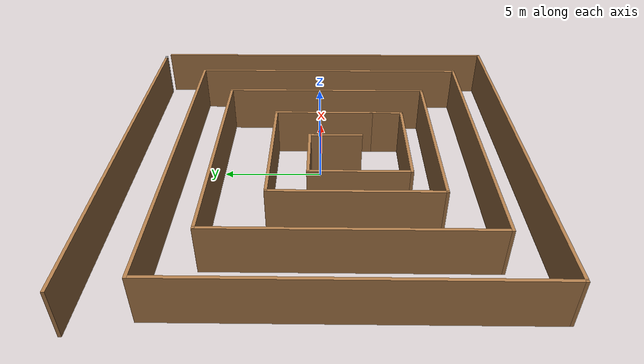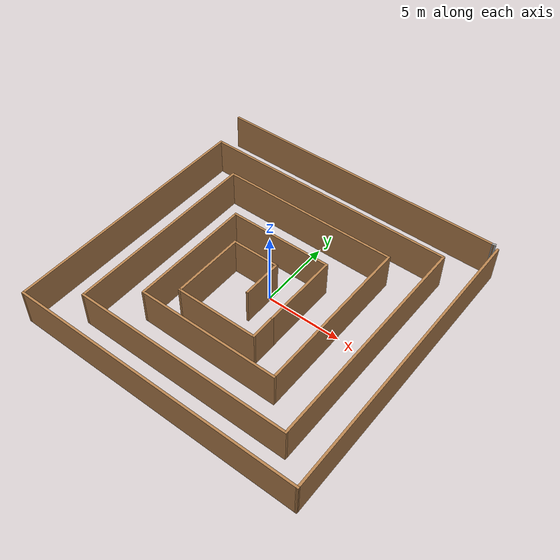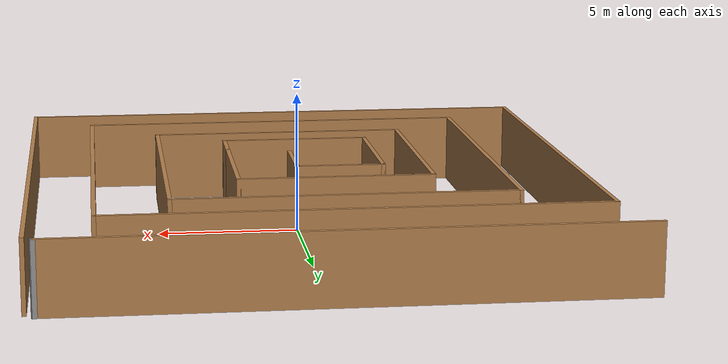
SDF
<?xml version='1.0'?>
<sdf version='1.7'>
  <model name='maze_square.world'>
    <pose>-0.485493 -0.027155 0 0 -0 0</pose>
    <link name='Wall_10'>
      <collision name='Wall_10_Collision'>
        <geometry>
          <box>
            <size>17.25 0.15 2.5</size>
          </box>
        </geometry>
        <pose>0 0 1.25 0 -0 0</pose>
      </collision>
      <visual name='Wall_10_Visual'>
        <pose>0 0 1.25 0 -0 0</pose>
        <geometry>
          <box>
            <size>17.25 0.15 2.5</size>
          </box>
        </geometry>
        <material>
          <script>
            <uri>file://media/materials/scripts/gazebo.material</uri>
            <name>Gazebo/Wood</name>
          </script>
          <ambient>1 1 1 1</ambient>
        </material>
        <meta>
          <layer>0</layer>
        </meta>
      </visual>
      <pose>-9.31144 -1.39746 0 0 -0 1.5708</pose>
    </link>
    <link name='Wall_11'>
      <collision name='Wall_11_Collision'>
        <geometry>
          <box>
            <size>17.25 0.15 2.5</size>
          </box>
        </geometry>
        <pose>0 0 1.25 0 -0 0</pose>
      </collision>
      <visual name='Wall_11_Visual'>
        <pose>0 0 1.25 0 -0 0</pose>
        <geometry>
          <box>
            <size>17.25 0.15 2.5</size>
          </box>
        </geometry>
        <material>
          <script>
            <uri>file://media/materials/scripts/gazebo.material</uri>
            <name>Gazebo/Wood</name>
          </script>
          <ambient>1 1 1 1</ambient>
        </material>
        <meta>
          <layer>0</layer>
        </meta>
      </visual>
      <pose>-0.761441 7.15254 0 0 -0 0</pose>
    </link>
    <link name='Wall_12'>
      <collision name='Wall_12_Collision'>
        <geometry>
          <box>
            <size>15.25 0.15 2.5</size>
          </box>
        </geometry>
        <pose>0 0 1.25 0 -0 0</pose>
      </collision>
      <visual name='Wall_12_Visual'>
        <pose>0 0 1.25 0 -0 0</pose>
        <geometry>
          <box>
            <size>15.25 0.15 2.5</size>
          </box>
        </geometry>
        <material>
          <script>
            <uri>file://media/materials/scripts/gazebo.material</uri>
            <name>Gazebo/Wood</name>
          </script>
          <ambient>1 1 1 1</ambient>
        </material>
        <meta>
          <layer>0</layer>
        </meta>
      </visual>
      <pose>7.78856 -0.397456 0 0 -0 -1.5708</pose>
    </link>
    <link name='Wall_13'>
      <collision name='Wall_13_Collision'>
        <geometry>
          <box>
            <size>14.5 0.15 2.5</size>
          </box>
        </geometry>
        <pose>0 0 1.25 0 -0 0</pose>
      </collision>
      <visual name='Wall_13_Visual'>
        <pose>0 0 1.25 0 -0 0</pose>
        <geometry>
          <box>
            <size>14.5 0.15 2.5</size>
          </box>
        </geometry>
        <material>
          <script>
            <uri>file://media/materials/scripts/gazebo.material</uri>
            <name>Gazebo/Wood</name>
          </script>
          <ambient>1 1 1 1</ambient>
        </material>
        <meta>
          <layer>0</layer>
        </meta>
      </visual>
      <pose>0.613559 -7.94746 0 0 -0 3.14159</pose>
    </link>
    <link name='Wall_14'>
      <collision name='Wall_14_Collision'>
        <geometry>
          <box>
            <size>13.25 0.15 2.5</size>
          </box>
        </geometry>
        <pose>0 0 1.25 0 -0 0</pose>
      </collision>
      <visual name='Wall_14_Visual'>
        <pose>0 0 1.25 0 -0 0</pose>
        <geometry>
          <box>
            <size>13.25 0.15 2.5</size>
          </box>
        </geometry>
        <material>
          <script>
            <uri>file://media/materials/scripts/gazebo.material</uri>
            <name>Gazebo/Wood</name>
          </script>
          <ambient>1 1 1 1</ambient>
        </material>
        <meta>
          <layer>0</layer>
        </meta>
      </visual>
      <pose>-6.56144 -1.39746 0 0 -0 1.5708</pose>
    </link>
    <link name='Wall_15'>
      <collision name='Wall_15_Collision'>
        <geometry>
          <box>
            <size>12 0.15 2.5</size>
          </box>
        </geometry>
        <pose>0 0 1.25 0 -0 0</pose>
      </collision>
      <visual name='Wall_15_Visual'>
        <pose>0 0 1.25 0 -0 0</pose>
        <geometry>
          <box>
            <size>12 0.15 2.5</size>
          </box>
        </geometry>
        <material>
          <script>
            <uri>file://media/materials/scripts/gazebo.material</uri>
            <name>Gazebo/Wood</name>
          </script>
          <ambient>1 1 1 1</ambient>
        </material>
        <meta>
          <layer>0</layer>
        </meta>
      </visual>
      <pose>-0.636441 5.15254 0 0 -0 0</pose>
    </link>
    <link name='Wall_16'>
      <collision name='Wall_16_Collision'>
        <geometry>
          <box>
            <size>11 0.15 2.5</size>
          </box>
        </geometry>
        <pose>0 0 1.25 0 -0 0</pose>
      </collision>
      <visual name='Wall_16_Visual'>
        <pose>0 0 1.25 0 -0 0</pose>
        <geometry>
          <box>
            <size>11 0.15 2.5</size>
          </box>
        </geometry>
        <material>
          <script>
            <uri>file://media/materials/scripts/gazebo.material</uri>
            <name>Gazebo/Wood</name>
          </script>
          <ambient>1 1 1 1</ambient>
        </material>
        <meta>
          <layer>0</layer>
        </meta>
      </visual>
      <pose>5.28856 -0.272456 0 0 -0 -1.5708</pose>
    </link>
    <link name='Wall_17'>
      <collision name='Wall_17_Collision'>
        <geometry>
          <box>
            <size>9.5 0.15 2.5</size>
          </box>
        </geometry>
        <pose>0 0 1.25 0 -0 0</pose>
      </collision>
      <visual name='Wall_17_Visual'>
        <pose>0 0 1.25 0 -0 0</pose>
        <geometry>
          <box>
            <size>9.5 0.15 2.5</size>
          </box>
        </geometry>
        <material>
          <script>
            <uri>file://media/materials/scripts/gazebo.material</uri>
            <name>Gazebo/Wood</name>
          </script>
          <ambient>1 1 1 1</ambient>
        </material>
        <meta>
          <layer>0</layer>
        </meta>
      </visual>
      <pose>0.613559 -5.69746 0 0 -0 3.14159</pose>
    </link>
    <link name='Wall_18'>
      <collision name='Wall_18_Collision'>
        <geometry>
          <box>
            <size>8.25 0.15 2.5</size>
          </box>
        </geometry>
        <pose>0 0 1.25 0 -0 0</pose>
      </collision>
      <visual name='Wall_18_Visual'>
        <pose>0 0 1.25 0 -0 0</pose>
        <geometry>
          <box>
            <size>8.25 0.15 2.5</size>
          </box>
        </geometry>
        <material>
          <script>
            <uri>file://media/materials/scripts/gazebo.material</uri>
            <name>Gazebo/Wood</name>
          </script>
          <ambient>1 1 1 1</ambient>
        </material>
        <meta>
          <layer>0</layer>
        </meta>
      </visual>
      <pose>-4.06144 -1.64746 0 0 -0 1.5708</pose>
    </link>
    <link name='Wall_19'>
      <collision name='Wall_19_Collision'>
        <geometry>
          <box>
            <size>7 0.15 2.5</size>
          </box>
        </geometry>
        <pose>0 0 1.25 0 -0 0</pose>
      </collision>
      <visual name='Wall_19_Visual'>
        <pose>0 0 1.25 0 -0 0</pose>
        <geometry>
          <box>
            <size>7 0.15 2.5</size>
          </box>
        </geometry>
        <material>
          <script>
            <uri>file://media/materials/scripts/gazebo.material</uri>
            <name>Gazebo/Wood</name>
          </script>
          <ambient>1 1 1 1</ambient>
        </material>
        <meta>
          <layer>0</layer>
        </meta>
      </visual>
      <pose>-0.636441 2.40254 0 0 -0 0</pose>
    </link>
    <link name='Wall_20'>
      <collision name='Wall_20_Collision'>
        <geometry>
          <box>
            <size>5.25 0.15 2.5</size>
          </box>
        </geometry>
        <pose>0 0 1.25 0 -0 0</pose>
      </collision>
      <visual name='Wall_20_Visual'>
        <pose>0 0 1.25 0 -0 0</pose>
        <geometry>
          <box>
            <size>5.25 0.15 2.5</size>
          </box>
        </geometry>
        <material>
          <script>
            <uri>file://media/materials/scripts/gazebo.material</uri>
            <name>Gazebo/Wood</name>
          </script>
          <ambient>1 1 1 1</ambient>
        </material>
        <meta>
          <layer>0</layer>
        </meta>
      </visual>
      <pose>2.78856 -0.147456 0 0 -0 -1.5708</pose>
    </link>
    <link name='Wall_21'>
      <collision name='Wall_21_Collision'>
        <geometry>
          <box>
            <size>1.75 0.15 2.5</size>
          </box>
        </geometry>
        <pose>0 0 1.25 0 -0 0</pose>
      </collision>
      <visual name='Wall_21_Visual'>
        <pose>0 0 1.25 0 -0 0</pose>
        <geometry>
          <box>
            <size>1.75 0.15 2.5</size>
          </box>
        </geometry>
        <material>
          <script>
            <uri>file://media/materials/scripts/gazebo.material</uri>
            <name>Gazebo/Wood</name>
          </script>
          <ambient>1 1 1 1</ambient>
        </material>
        <meta>
          <layer>0</layer>
        </meta>
      </visual>
      <pose>2.78856 -3.49746 0 0 -0 -1.5708</pose>
    </link>
    <link name='Wall_22'>
      <collision name='Wall_22_Collision'>
        <geometry>
          <box>
            <size>5.5 0.15 2.5</size>
          </box>
        </geometry>
        <pose>0 0 1.25 0 -0 0</pose>
      </collision>
      <visual name='Wall_22_Visual'>
        <pose>0 0 1.25 0 -0 0</pose>
        <geometry>
          <box>
            <size>5.5 0.15 2.5</size>
          </box>
        </geometry>
        <material>
          <script>
            <uri>file://media/materials/scripts/gazebo.material</uri>
            <name>Gazebo/Wood</name>
          </script>
          <ambient>1 1 1 1</ambient>
        </material>
        <meta>
          <layer>0</layer>
        </meta>
      </visual>
      <pose>0.113559 -4.29746 0 0 -0 3.14159</pose>
    </link>
    <link name='Wall_23'>
      <collision name='Wall_23_Collision'>
        <geometry>
          <box>
            <size>5 0.15 2.5</size>
          </box>
        </geometry>
        <pose>0 0 1.25 0 -0 0</pose>
      </collision>
      <visual name='Wall_23_Visual'>
        <pose>0 0 1.25 0 -0 0</pose>
        <geometry>
          <box>
            <size>5 0.15 2.5</size>
          </box>
        </geometry>
        <material>
          <script>
            <uri>file://media/materials/scripts/gazebo.material</uri>
            <name>Gazebo/Wood</name>
          </script>
          <ambient>1 1 1 1</ambient>
        </material>
        <meta>
          <layer>0</layer>
        </meta>
      </visual>
      <pose>-2.56144 -1.87246 0 0 -0 1.5708</pose>
    </link>
    <link name='Wall_24'>
      <collision name='Wall_24_Collision'>
        <geometry>
          <box>
            <size>3.25 0.15 2.5</size>
          </box>
        </geometry>
        <pose>0 0 1.25 0 -0 0</pose>
      </collision>
      <visual name='Wall_24_Visual'>
        <pose>0 0 1.25 0 -0 0</pose>
        <geometry>
          <box>
            <size>3.25 0.15 2.5</size>
          </box>
        </geometry>
        <material>
          <script>
            <uri>file://media/materials/scripts/gazebo.material</uri>
            <name>Gazebo/Wood</name>
          </script>
          <ambient>1 1 1 1</ambient>
        </material>
        <meta>
          <layer>0</layer>
        </meta>
      </visual>
      <pose>-1.01144 0.552544 0 0 -0 0</pose>
    </link>
    <link name='Wall_25'>
      <collision name='Wall_25_Collision'>
        <geometry>
          <box>
            <size>2.75 0.15 2.5</size>
          </box>
        </geometry>
        <pose>0 0 1.25 0 -0 0</pose>
      </collision>
      <visual name='Wall_25_Visual'>
        <pose>0 0 1.25 0 -0 0</pose>
        <geometry>
          <box>
            <size>2.75 0.15 2.5</size>
          </box>
        </geometry>
        <material>
          <script>
            <uri>file://media/materials/scripts/gazebo.material</uri>
            <name>Gazebo/Wood</name>
          </script>
          <ambient>1 1 1 1</ambient>
        </material>
        <meta>
          <layer>0</layer>
        </meta>
      </visual>
      <pose>0.538559 -0.747456 0 0 -0 -1.5708</pose>
    </link>
    <link name='Wall_27'>
      <collision name='Wall_27_Collision'>
        <geometry>
          <box>
            <size>0.25 0.15 2.5</size>
          </box>
        </geometry>
        <pose>0 0 1.25 0 -0 0</pose>
      </collision>
      <visual name='Wall_27_Visual'>
        <pose>0 0 1.25 0 -0 0</pose>
        <geometry>
          <box>
            <size>0.25 0.15 2.5</size>
          </box>
        </geometry>
        <material>
          <script>
            <uri>file://media/materials/scripts/gazebo.material</uri>
            <name>Gazebo/Grey</name>
          </script>
          <ambient>1 1 1 1</ambient>
        </material>
        <meta>
          <layer>0</layer>
        </meta>
      </visual>
      <pose>9.60947 9.91793 0 0 -0 -2.87979</pose>
    </link>
    <link name='Wall_28'>
      <collision name='Wall_28_Collision'>
        <geometry>
          <box>
            <size>19.75 0.15 2.5</size>
          </box>
        </geometry>
        <pose>0 0 1.25 0 -0 0</pose>
      </collision>
      <visual name='Wall_28_Visual'>
        <pose>0 0 1.25 0 -0 0</pose>
        <geometry>
          <box>
            <size>19.75 0.15 2.5</size>
          </box>
        </geometry>
        <material>
          <script>
            <uri>file://media/materials/scripts/gazebo.material</uri>
            <name>Gazebo/Wood</name>
          </script>
          <ambient>1 1 1 1</ambient>
        </material>
        <meta>
          <layer>0</layer>
        </meta>
      </visual>
      <pose>-0.238829 9.90499 0 0 -0 3.14159</pose>
    </link>
    <link name='Wall_8'>
      <collision name='Wall_8_Collision'>
        <geometry>
          <box>
            <size>19.7454 0.15 2.5</size>
          </box>
        </geometry>
        <pose>0 0 1.25 0 -0 0</pose>
      </collision>
      <visual name='Wall_8_Visual'>
        <pose>0 0 1.25 0 -0 0</pose>
        <geometry>
          <box>
            <size>19.7454 0.15 2.5</size>
          </box>
        </geometry>
        <material>
          <script>
            <uri>file://media/materials/scripts/gazebo.material</uri>
            <name>Gazebo/Wood</name>
          </script>
          <ambient>1 1 1 1</ambient>
        </material>
        <meta>
          <layer>0</layer>
        </meta>
      </visual>
      <pose>10.0032 -0.149806 0 0 -0 -1.56719</pose>
    </link>
    <link name='Wall_9'>
      <collision name='Wall_9_Collision'>
        <geometry>
          <box>
            <size>19.5 0.15 2.5</size>
          </box>
        </geometry>
        <pose>0 0 1.25 0 -0 0</pose>
      </collision>
      <visual name='Wall_9_Visual'>
        <pose>0 0 1.25 0 -0 0</pose>
        <geometry>
          <box>
            <size>19.5 0.15 2.5</size>
          </box>
        </geometry>
        <material>
          <script>
            <uri>file://media/materials/scripts/gazebo.material</uri>
            <name>Gazebo/Wood</name>
          </script>
          <ambient>1 1 1 1</ambient>
        </material>
        <meta>
          <layer>0</layer>
        </meta>
      </visual>
      <pose>0.363559 -9.94745 0 0 -0 3.14159</pose>
    </link>
    <static>1</static>
  </model>
</sdf>
